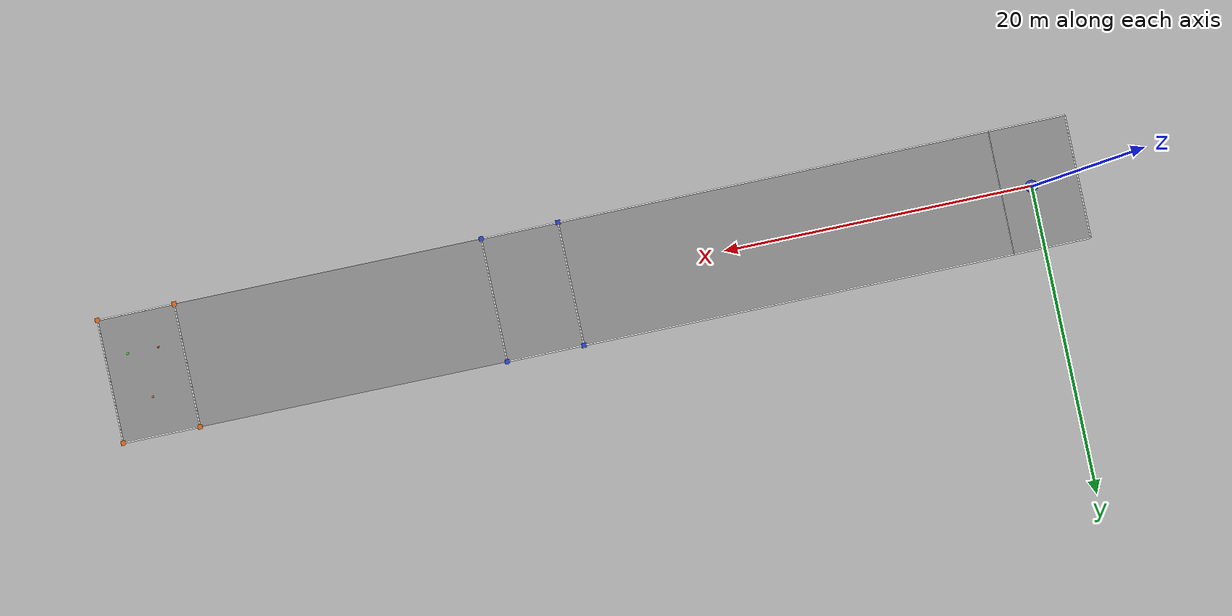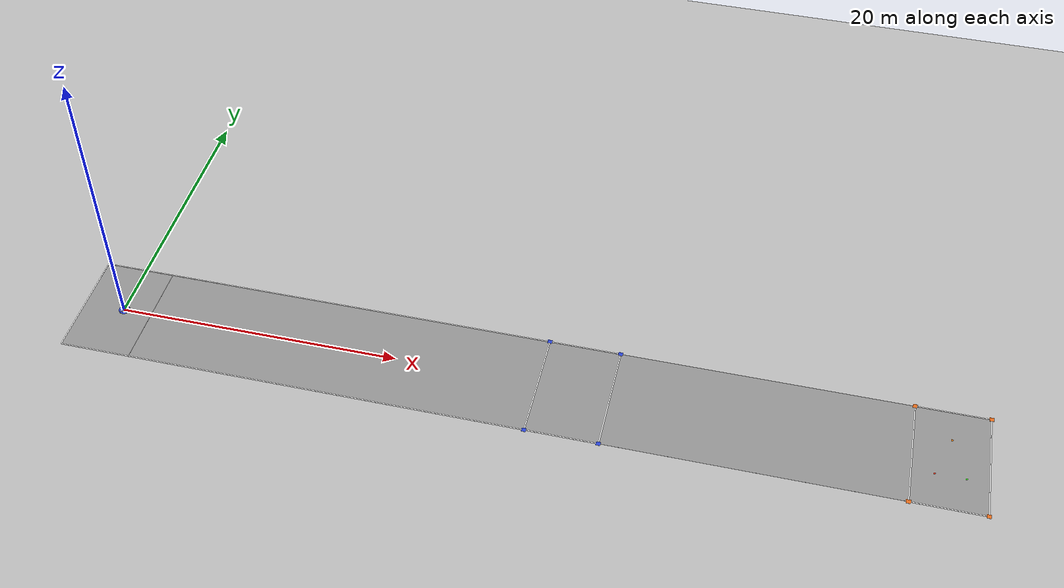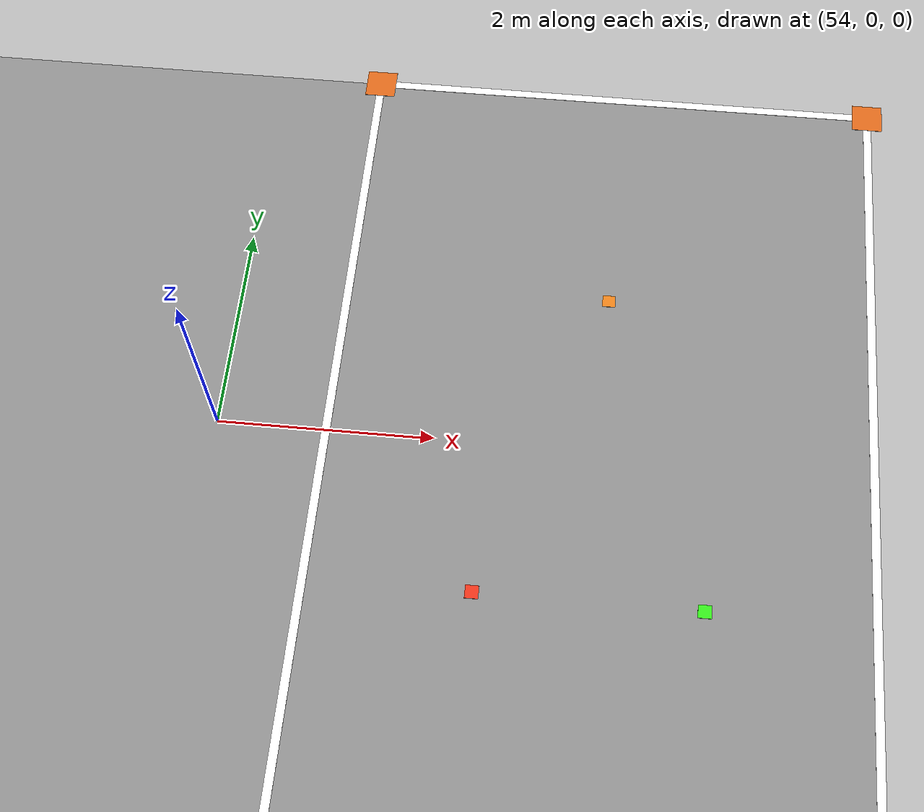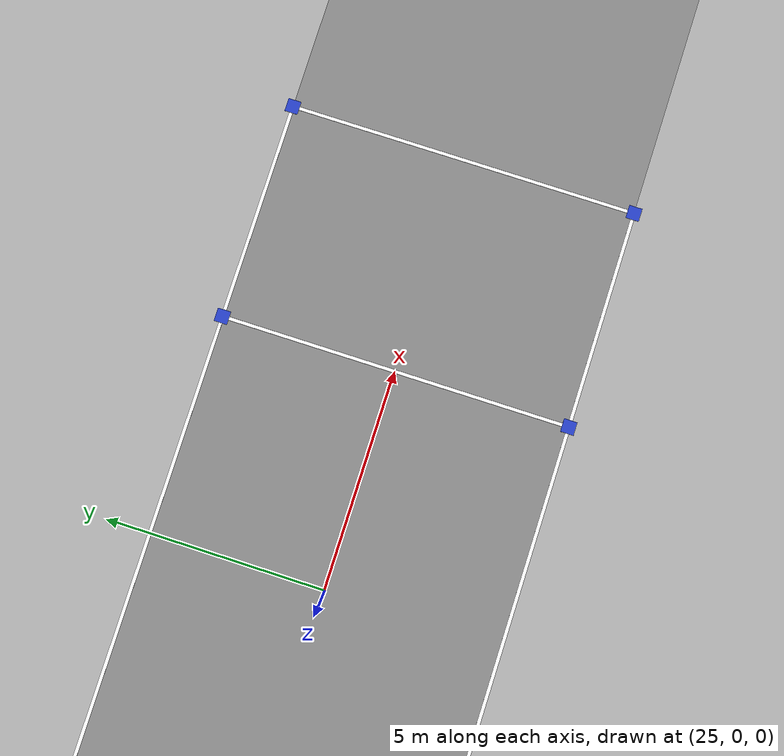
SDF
<sdf version="1.8">
 <world name="cuadc_2026_field">
  <physics name="1ms" type="dartsim">
   <max_step_size>0.001</max_step_size>
   <real_time_factor>1.0</real_time_factor>
  </physics>
  <gravity>0 0 -9.8</gravity>
  <plugin filename="gz-sim-physics-system" name="gz::sim::systems::Physics"/>
  <plugin filename="gz-sim-sensors-system" name="gz::sim::systems::Sensors">
   <render_engine>ogre2</render_engine>
  </plugin>
  <plugin filename="gz-sim-user-commands-system" name="gz::sim::systems::UserCommands"/>
  <plugin filename="gz-sim-scene-broadcaster-system" name="gz::sim::systems::SceneBroadcaster"/>
  <plugin filename="gz-sim-imu-system" name="gz::sim::systems::Imu"/>
  <scene><ambient>0.4 0.4 0.4 1</ambient><background>0.7 0.7 0.7 1</background><shadows>true</shadows></scene>
  <light name="sun" type="directional">
   <pose>0 0 10 0 0 0</pose>
   <diffuse>0.9 0.9 0.9 1</diffuse>
   <specular>0.5 0.5 0.5 1</specular>
   <direction>-0.5 0.1 -0.9</direction>
  </light>
  <model name="ground_plane">
   <static>true</static>
   <link name="link">
    <collision name="collision">
     <geometry><plane><normal>0 0 1</normal><size>200 200</size></plane></geometry>
     <surface><friction><ode><mu>100</mu><mu2>50</mu2></ode></friction></surface>
    </collision>
    <visual name="visual">
     <geometry><plane><normal>0 0 1</normal><size>200 200</size></plane></geometry>
     <material><ambient>0.5 0.5 0.5 1</ambient><diffuse>0.7 0.7 0.7 1</diffuse></material>
    </visual>
   </link>
  </model>
  <model name="takeoff_zone">
   <static>true</static>
   <pose>13.5 0 0 0 0 0</pose>
   <link name="link">
    <visual name="visual">
     <geometry><box><size>33 8 0.005</size></box></geometry>
     <material><ambient>0.35 0.35 0.35 1</ambient><diffuse>0.55 0.55 0.55 1</diffuse></material>
    </visual>
   </link>
  </model>
  <model name="landing_pad">
   <static>true</static>
   <pose>0 0 0.006 0 0 0</pose>
   <link name="link">
    <visual name="visual">
     <geometry><cylinder><radius>0.4</radius><length>0.005</length></cylinder></geometry>
     <material><ambient>0.1 0.2 0.7 1</ambient><diffuse>0.15 0.25 0.8 1</diffuse></material>
    </visual>
   </link>
  </model>
  <model name="takeoff_border_N">
   <static>true</static>
   <pose>13.5 4 0.004 0 0 0</pose>
   <link name="link">
    <visual name="v">
     <geometry><box><size>33 0.08 0.002</size></box></geometry>
     <material><ambient>1 1 1 1</ambient><diffuse>1 1 1 1</diffuse></material>
    </visual>
   </link>
  </model>
  <model name="takeoff_border_S">
   <static>true</static>
   <pose>13.5 -4 0.004 0 0 0</pose>
   <link name="link">
    <visual name="v">
     <geometry><box><size>33 0.08 0.002</size></box></geometry>
     <material><ambient>1 1 1 1</ambient><diffuse>1 1 1 1</diffuse></material>
    </visual>
   </link>
  </model>
  <model name="takeoff_border_E">
   <static>true</static>
   <pose>30 0 0.004 0 0 0</pose>
   <link name="link">
    <visual name="v">
     <geometry><box><size>0.08 8 0.002</size></box></geometry>
     <material><ambient>1 1 1 1</ambient><diffuse>1 1 1 1</diffuse></material>
    </visual>
   </link>
  </model>
  <model name="takeoff_border_W">
   <static>true</static>
   <pose>-3 0 0.004 0 0 0</pose>
   <link name="link">
    <visual name="v">
     <geometry><box><size>0.08 8 0.002</size></box></geometry>
     <material><ambient>1 1 1 1</ambient><diffuse>1 1 1 1</diffuse></material>
    </visual>
   </link>
  </model>
  <model name="takeoff_line">
   <static>true</static>
   <pose>2 0 0.005 0 0 0</pose>
   <link name="link">
    <visual name="v">
     <geometry><box><size>0.04 8 0.002</size></box></geometry>
     <material><ambient>1 1 1 1</ambient><diffuse>1 1 1 1</diffuse></material>
    </visual>
   </link>
  </model>
  <model name="landing_h_horiz">
   <static>true</static>
   <pose>0 0 0.010 0 0 0</pose>
   <link name="link">
    <visual name="v">
     <geometry><box><size>0.08 0.44 0.003</size></box></geometry>
     <material><ambient>1 1 1 1</ambient><diffuse>1 1 1 1</diffuse></material>
    </visual>
   </link>
  </model>
  <model name="landing_h_left">
   <static>true</static>
   <pose>0 -0.18 0.010 0 0 0</pose>
   <link name="link">
    <visual name="v">
     <geometry><box><size>0.52 0.08 0.003</size></box></geometry>
     <material><ambient>1 1 1 1</ambient><diffuse>1 1 1 1</diffuse></material>
    </visual>
   </link>
  </model>
  <model name="landing_h_right">
   <static>true</static>
   <pose>0 0.18 0.010 0 0 0</pose>
   <link name="link">
    <visual name="v">
     <geometry><box><size>0.52 0.08 0.003</size></box></geometry>
     <material><ambient>1 1 1 1</ambient><diffuse>1 1 1 1</diffuse></material>
    </visual>
   </link>
  </model>
  <model name="drop_zone">
   <static>true</static>
   <pose>32.5 0 0.0005 0 0 0</pose>
   <link name="link">
    <visual name="visual">
     <geometry><box><size>5 8 0.001</size></box></geometry>
     <material><ambient>0.35 0.35 0.35 1</ambient><diffuse>0.55 0.55 0.55 1</diffuse></material>
    </visual>
   </link>
  </model>
  <model name="drop_border_N">
   <static>true</static>
   <pose>32.5 4 0.004 0 0 0</pose>
   <link name="link">
    <visual name="v">
     <geometry><box><size>5 0.08 0.002</size></box></geometry>
     <material><ambient>1 1 1 1</ambient><diffuse>1 1 1 1</diffuse></material>
    </visual>
   </link>
  </model>
  <model name="drop_border_S">
   <static>true</static>
   <pose>32.5 -4 0.004 0 0 0</pose>
   <link name="link">
    <visual name="v">
     <geometry><box><size>5 0.08 0.002</size></box></geometry>
     <material><ambient>1 1 1 1</ambient><diffuse>1 1 1 1</diffuse></material>
    </visual>
   </link>
  </model>
  <model name="drop_border_E">
   <static>true</static>
   <pose>35 0 0.004 0 0 0</pose>
   <link name="link">
    <visual name="v">
     <geometry><box><size>0.08 8 0.002</size></box></geometry>
     <material><ambient>1 1 1 1</ambient><diffuse>1 1 1 1</diffuse></material>
    </visual>
   </link>
  </model>
  <model name="drop_border_W">
   <static>true</static>
   <pose>30 0 0.004 0 0 0</pose>
   <link name="link">
    <visual name="v">
     <geometry><box><size>0.08 8 0.002</size></box></geometry>
     <material><ambient>1 1 1 1</ambient><diffuse>1 1 1 1</diffuse></material>
    </visual>
   </link>
  </model>
  <model name="drop_corner_NE">
   <static>true</static>
   <pose>35 4 0.004 0 0 0</pose>
   <link name="link">
    <visual name="v">
     <geometry><box><size>0.3 0.3 0.003</size></box></geometry>
     <material><ambient>0.1 0.2 0.7 1</ambient><diffuse>0.15 0.25 0.8 1</diffuse></material>
    </visual>
   </link>
  </model>
  <model name="drop_corner_NW">
   <static>true</static>
   <pose>30 4 0.004 0 0 0</pose>
   <link name="link">
    <visual name="v">
     <geometry><box><size>0.3 0.3 0.003</size></box></geometry>
     <material><ambient>0.1 0.2 0.7 1</ambient><diffuse>0.15 0.25 0.8 1</diffuse></material>
    </visual>
   </link>
  </model>
  <model name="drop_corner_SE">
   <static>true</static>
   <pose>35 -4 0.004 0 0 0</pose>
   <link name="link">
    <visual name="v">
     <geometry><box><size>0.3 0.3 0.003</size></box></geometry>
     <material><ambient>0.1 0.2 0.7 1</ambient><diffuse>0.15 0.25 0.8 1</diffuse></material>
    </visual>
   </link>
  </model>
  <model name="drop_corner_SW">
   <static>true</static>
   <pose>30 -4 0.004 0 0 0</pose>
   <link name="link">
    <visual name="v">
     <geometry><box><size>0.3 0.3 0.003</size></box></geometry>
     <material><ambient>0.1 0.2 0.7 1</ambient><diffuse>0.15 0.25 0.8 1</diffuse></material>
    </visual>
   </link>
  </model>
  <model name="runway_fill_35_55">
   <static>true</static>
   <pose>45 0 0.0004 0 0 0</pose>
   <link name="link">
    <visual name="visual">
     <geometry><box><size>20 8 0.0008</size></box></geometry>
     <material><ambient>0.35 0.35 0.35 1</ambient><diffuse>0.55 0.55 0.55 1</diffuse></material>
    </visual>
   </link>
  </model>
  <model name="recon_zone">
   <static>true</static>
   <pose>57.5 0 0.0005 0 0 0</pose>
   <link name="link">
    <visual name="visual">
     <geometry><box><size>5 8 0.001</size></box></geometry>
     <material><ambient>0.35 0.35 0.35 1</ambient><diffuse>0.55 0.55 0.55 1</diffuse></material>
    </visual>
   </link>
  </model>
  <model name="recon_border_N">
   <static>true</static>
   <pose>57.5 4 0.005 0 0 0</pose>
   <link name="link">
    <visual name="v">
     <geometry><box><size>5 0.08 0.002</size></box></geometry>
     <material><ambient>1 1 1 1</ambient><diffuse>1 1 1 1</diffuse></material>
    </visual>
   </link>
  </model>
  <model name="recon_border_S">
   <static>true</static>
   <pose>57.5 -4 0.005 0 0 0</pose>
   <link name="link">
    <visual name="v">
     <geometry><box><size>5 0.08 0.002</size></box></geometry>
     <material><ambient>1 1 1 1</ambient><diffuse>1 1 1 1</diffuse></material>
    </visual>
   </link>
  </model>
  <model name="recon_border_E">
   <static>true</static>
   <pose>60 0 0.005 0 0 0</pose>
   <link name="link">
    <visual name="v">
     <geometry><box><size>0.08 8 0.002</size></box></geometry>
     <material><ambient>1 1 1 1</ambient><diffuse>1 1 1 1</diffuse></material>
    </visual>
   </link>
  </model>
  <model name="recon_border_W">
   <static>true</static>
   <pose>55 0 0.005 0 0 0</pose>
   <link name="link">
    <visual name="v">
     <geometry><box><size>0.08 8 0.002</size></box></geometry>
     <material><ambient>1 1 1 1</ambient><diffuse>1 1 1 1</diffuse></material>
    </visual>
   </link>
  </model>
  <model name="recon_corner_NE">
   <static>true</static>
   <pose>60 4 0.005 0 0 0</pose>
   <link name="link">
    <visual name="v">
     <geometry><box><size>0.3 0.3 0.003</size></box></geometry>
     <material><ambient>0.7 0.3 0.05 1</ambient><diffuse>0.85 0.4 0.1 1</diffuse></material>
    </visual>
   </link>
  </model>
  <model name="recon_corner_NW">
   <static>true</static>
   <pose>55 4 0.005 0 0 0</pose>
   <link name="link">
    <visual name="v">
     <geometry><box><size>0.3 0.3 0.003</size></box></geometry>
     <material><ambient>0.7 0.3 0.05 1</ambient><diffuse>0.85 0.4 0.1 1</diffuse></material>
    </visual>
   </link>
  </model>
  <model name="recon_corner_SE">
   <static>true</static>
   <pose>60 -4 0.005 0 0 0</pose>
   <link name="link">
    <visual name="v">
     <geometry><box><size>0.3 0.3 0.003</size></box></geometry>
     <material><ambient>0.7 0.3 0.05 1</ambient><diffuse>0.85 0.4 0.1 1</diffuse></material>
    </visual>
   </link>
  </model>
  <model name="recon_corner_SW">
   <static>true</static>
   <pose>55 -4 0.005 0 0 0</pose>
   <link name="link">
    <visual name="v">
     <geometry><box><size>0.3 0.3 0.003</size></box></geometry>
     <material><ambient>0.7 0.3 0.05 1</ambient><diffuse>0.85 0.4 0.1 1</diffuse></material>
    </visual>
   </link>
  </model>
  <model name="hazard_sign_1">
   <static>true</static>
   <pose>56.5 -1.5 0.16 0 0 0</pose>
   <link name="link">
    <visual name="visual">
     <geometry><box><size>0.12 0.12 0.005</size></box></geometry>
     <material><ambient>1 0.3 0 1</ambient><diffuse>0.9 0.2 0.1 1</diffuse></material>
    </visual>
   </link>
  </model>
  <model name="hazard_sign_2">
   <static>true</static>
   <pose>58.5 -1.5 0.16 0 0 0</pose>
   <link name="link">
    <visual name="visual">
     <geometry><box><size>0.12 0.12 0.005</size></box></geometry>
     <material><ambient>0.3 1 0 1</ambient><diffuse>0.2 0.9 0.1 1</diffuse></material>
    </visual>
   </link>
  </model>
  <model name="hazard_sign_3">
   <static>true</static>
   <pose>57.5 1.5 0.16 0 0 0</pose>
   <link name="link">
    <visual name="visual">
     <geometry><box><size>0.12 0.12 0.005</size></box></geometry>
     <material><ambient>1 0.6 0 1</ambient><diffuse>0.9 0.5 0.1 1</diffuse></material>
    </visual>
   </link>
  </model>
 </world>
</sdf>
